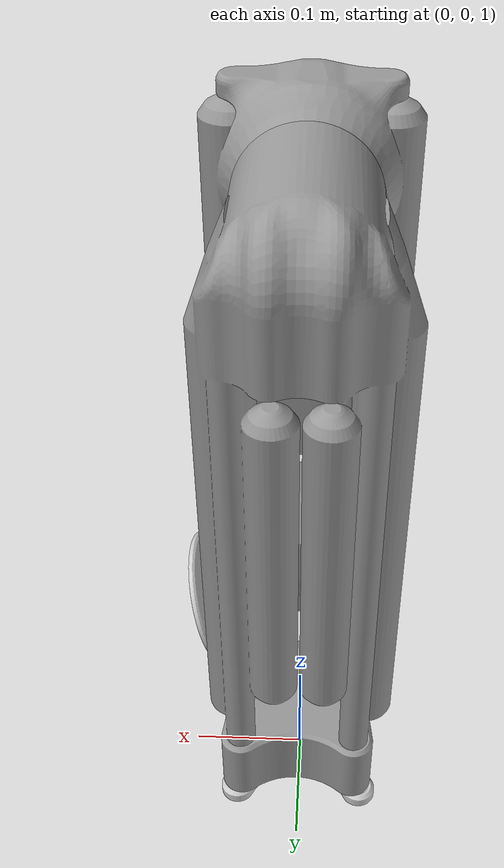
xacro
<robot xmlns:sensor="http://playerstage.sourceforge.net/gazebo/xmlschema/#sensor"
xmlns:controller="http://playerstage.sourceforge.net/gazebo/xmlschema/#controller"
xmlns:interface="http://playerstage.sourceforge.net/gazebo/xmlschema/#interface"
xmlns:xacro="http://www.ros.org/wiki/xacro" name="full_arm_motor">
    <xacro:include filename="$(find sr_description)/arm/xacro/base/shadowarm_base.urdf.xacro" />
    <xacro:include filename="$(find sr_description)/arm/xacro/trunk/shadowarm_trunk.urdf.xacro" />
    <xacro:include filename="$(find sr_description)/arm/xacro/upper_arm/shadowarm_upperarm.urdf.xacro" />
    <xacro:include filename="$(find sr_description)/arm/xacro/lower_arm/shadowarm_lowerarm.urdf.xacro" />
    <xacro:include filename="$(find sr_description)/arm/xacro/hand_support/shadowarm_handsupport_motor.urdf.xacro" />
    <link name="world" />
    <joint name="arm_to_world_fixed" type="fixed">
        <parent link="world" />
        <child link="shadowarm_base" />
        <origin rpy="0 0 0" xyz="0 0 1.0" />
    </joint>

    <xacro:shadowarm_base></xacro:shadowarm_base>
    <xacro:shadowarm_trunk parent="shadowarm_base">
    </xacro:shadowarm_trunk>
    <xacro:shadowarm_upperarm parent="shadowarm_trunk">
    </xacro:shadowarm_upperarm>
    <xacro:shadowarm_lowerarm parent="shadowarm_upperarm">
    </xacro:shadowarm_lowerarm>
    <xacro:shadowarm_handsupport_motor parent="shadowarm_lowerarm">
    </xacro:shadowarm_handsupport_motor>
</robot>

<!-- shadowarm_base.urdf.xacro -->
<robot xmlns:xacro="http://www.ros.org/wiki/xacro">
  <xacro:property name="M_PI" value="3.1415926535897931" />
  <xacro:macro name="shadowarm_base">
    <link name="shadowarm_base">
      <inertial>
        <origin xyz="0 0 0" rpy="0 0 0" />
        <mass value="0.4" />
        <inertia ixx="0.00071" ixy="0.0" ixz="0.0" iyy="0.00071"
        iyz="0.0" izz="0.0014" />
      </inertial>
      <visual>
        <origin xyz="0 0 0" rpy="0 0 0" />
        <geometry name="shadowarm_base_visual">
          <mesh filename="package://sr_description/arm/model/arm_base.dae"
          scale="0.001 0.001 0.001" />
        </geometry>
        <material name="LightGrey" />
      </visual>
      <collision>
        <origin xyz="0 0 0" rpy="0 0 0" />
        <geometry name="shadowarm_base_visual">
          <mesh filename="package://sr_description/arm/model/arm_base.dae"
          scale="0.001 0.001 0.001" />
        </geometry>
      </collision>
    </link>
  </xacro:macro>
</robot>

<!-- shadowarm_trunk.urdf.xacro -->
<robot xmlns:xacro="http://www.ros.org/wiki/xacro">
  <xacro:macro name="shadowarm_trunk" params="parent">
    <link name="shadowarm_trunk">
      <inertial>
        <origin xyz="0 0 0.26525" rpy="0 0 0" />
        <mass value="10" />
        <inertia ixx="0.298" ixy="0.0" ixz="0.0" iyy="0.298"
        iyz="0.0" izz="0.0361" />
      </inertial>
      <visual>
        <origin xyz="0 0 0.005" rpy="0 0 0" />
        <geometry name="shadowarm_trunk_visual">
          <mesh filename="package://sr_description/arm/model/arm_trunk.dae"
          scale="0.001 0.001 0.001" />
        </geometry>
        <material name="Grey" />
      </visual>
      <collision>
        <origin xyz="0 0 0.005" rpy="0 0 0" />
        <geometry name="shadowarm_trunk_visual">
          <mesh filename="package://sr_description/arm/model/arm_trunk.dae"
          scale="0.001 0.001 0.001" />
        </geometry>
      </collision>
    </link>
    <joint name="ShoulderJRotate" type="revolute">
      <parent link="${parent}" />
      <child link="shadowarm_trunk" />
      <origin xyz="0 0 0.01" rpy="0.0 0.0 0.0" />
      <axis xyz="0 0 1" />
      <limit lower="-${M_PI/4}" upper="${M_PI/2}" effort="70"
      velocity="1.0" />
      <dynamics damping="5.5" />
    </joint>
  </xacro:macro>
</robot>

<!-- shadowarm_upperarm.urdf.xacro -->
<robot xmlns:xacro="http://www.ros.org/wiki/xacro">
  <xacro:macro name="shadowarm_upperarm" params="parent">
    <link name="shadowarm_upperarm">
      <inertial>
        <origin xyz="0 0 0.1845" rpy="0 0 0" />
        <mass value="2" />
        <inertia ixx="0.044" ixy="0.0" ixz="0.0" iyy="0.044"
        iyz="0.0" izz="0.0056" />
      </inertial>
      <visual>
        <origin xyz="0 0.067 0" rpy="0 0 0" />
        <geometry name="shadowarm_upperarm_visual">
          <mesh filename="package://sr_description/arm/model/upper_arm.dae"
          scale="0.001 0.001 0.001" />
        </geometry>
        <material name="Grey" />
      </visual>
      <collision>
        <origin xyz="0 0.067 0" rpy="0 0 0" />
        <geometry name="shadowarm_upperarm_visual">
          <mesh filename="package://sr_description/arm/model/upper_arm.dae"
          scale="0.001 0.001 0.001" />
        </geometry>
      </collision>
    </link>
    <joint name="ShoulderJSwing" type="revolute">
      <parent link="${parent}" />
      <child link="shadowarm_upperarm" />
      <origin xyz="0 -0.134 0.5305" rpy="0 -${M_PI} 0.0" />
      <!-- yaw=-0.026 -->
      <axis xyz="0 -1 0" />
      <limit lower="0" upper="${M_PI/2}" effort="100"
      velocity="1.0" />
      <dynamics damping="5.3" />
    </joint>
  </xacro:macro>
</robot>

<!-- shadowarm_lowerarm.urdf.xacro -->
<robot xmlns:xacro="http://www.ros.org/wiki/xacro">
  <xacro:macro name="shadowarm_lowerarm" params="parent">
    <link name="shadowarm_lowerarm">
      <inertial>
        <origin xyz="0.08 0 0.0625" rpy="0 0 0" />
        <mass value="1.7" />
        <inertia ixx="0.0016" ixy="0.0" ixz="0.0" iyy="0.0016"
        iyz="0.0" izz="0.0018" />
      </inertial>
      <visual>
        <origin xyz="0.03 0 0.036" rpy="0 0 0" />
        <geometry name="shadowarm_lowerarm_visual">
          <mesh filename="package://sr_description/arm/model/elbow_flex.dae"
          scale="0.001 0.001 0.001" />
        </geometry>
        <material name="Grey" />
      </visual>
      <collision>
        <origin xyz="0.03 0 0.036" rpy="0 0 0" />
        <geometry name="shadowarm_lowerarm_visual">
          <mesh filename="package://sr_description/arm/model/elbow_flex.dae"
          scale="0.001 0.001 0.001" />
        </geometry>
      </collision>
    </link>
    <joint name="ElbowJSwing" type="revolute">
      <parent link="${parent}" />
      <child link="shadowarm_lowerarm" />
      <origin xyz="0 0 0.369" rpy="0 0 0" />
      <axis xyz="0 -1 0" />
      <limit lower="0.52" upper="2.09439510239" effort="50"
      velocity="1.0" />
      <dynamics damping="5.5" />
    </joint>
  </xacro:macro>
</robot>

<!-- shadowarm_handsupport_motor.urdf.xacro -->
<robot xmlns:xacro="http://www.ros.org/wiki/xacro">
  <xacro:macro name="shadowarm_handsupport_motor" params="parent">
    <link name="shadowarm_handsupport">
      <inertial>
        <origin xyz="0 0 0" rpy="0 0 0" />
        <mass value="0.75" />
        <inertia ixx="0.00086" ixy="0.0" ixz="0.0" iyy="0.00086"
        iyz="0.0" izz="0.0017" />
      </inertial>
      <visual>
        <origin xyz="0 0 -0.04" rpy="0 0 0" />
        <geometry name="shadowarm_handsupport_visual">
          <mesh filename="package://sr_description/arm/model/elbow_rotate_motor.dae"
          scale="0.001 0.001 0.001" />
        </geometry>
        <material name="LightGrey" />
      </visual>
      <collision>
        <origin xyz="0 0 -0.04" rpy="0 0 0" />
        <geometry name="shadowarm_handsupport_visual">
          <mesh filename="package://sr_description/arm/model/elbow_rotate_motor.dae"
          scale="0.001 0.001 0.001" />
        </geometry>
      </collision>
    </link>
    <joint name="ElbowJRotate" type="revolute">
      <parent link="${parent}" />
      <child link="shadowarm_handsupport" />
      <origin xyz="0.08 0 0.125" rpy="0.0 0 0" />
      <axis xyz="0 0 -1" />
      <limit lower="-${M_PI/2}" upper="${M_PI/2}" effort="30"
      velocity="1.0" />
      <dynamics damping="5.5" />
    </joint>
  </xacro:macro>
</robot>
